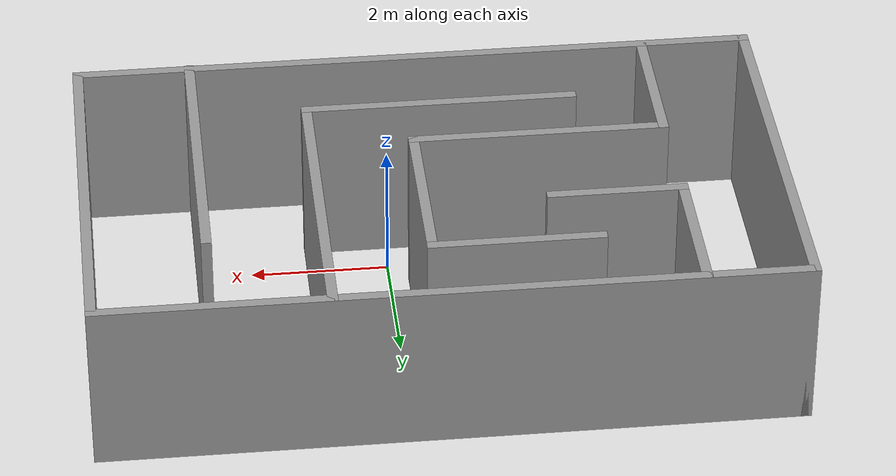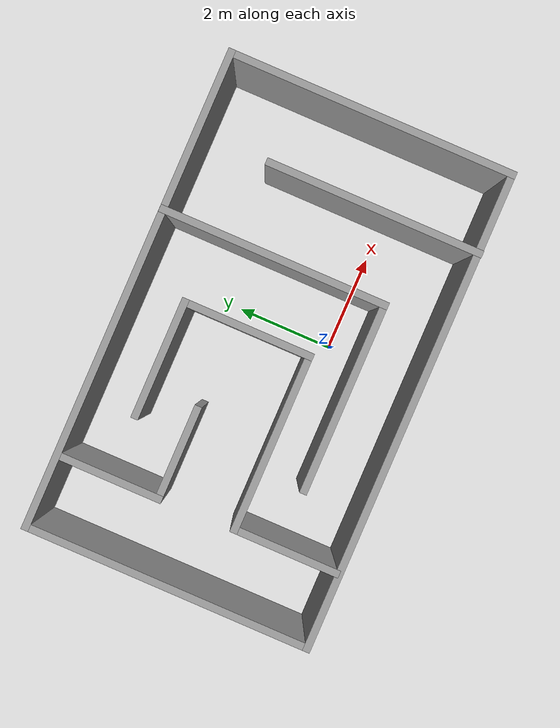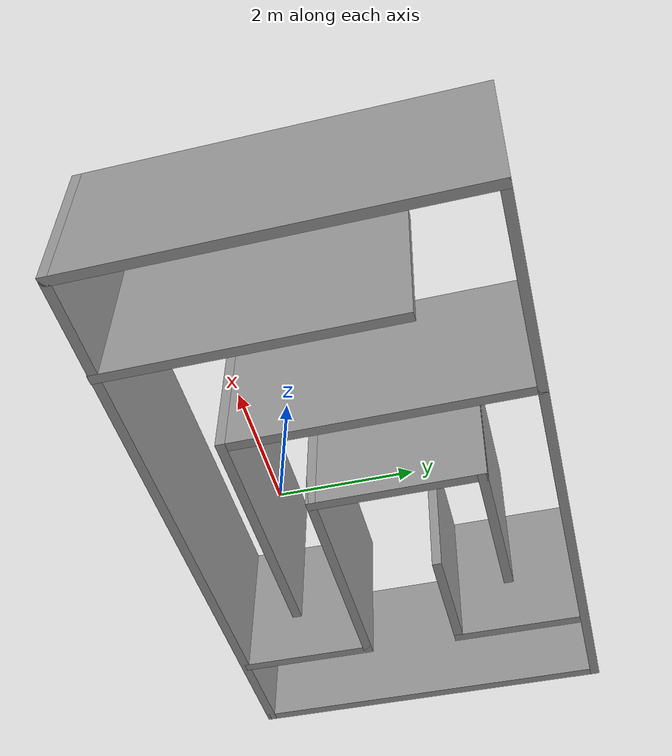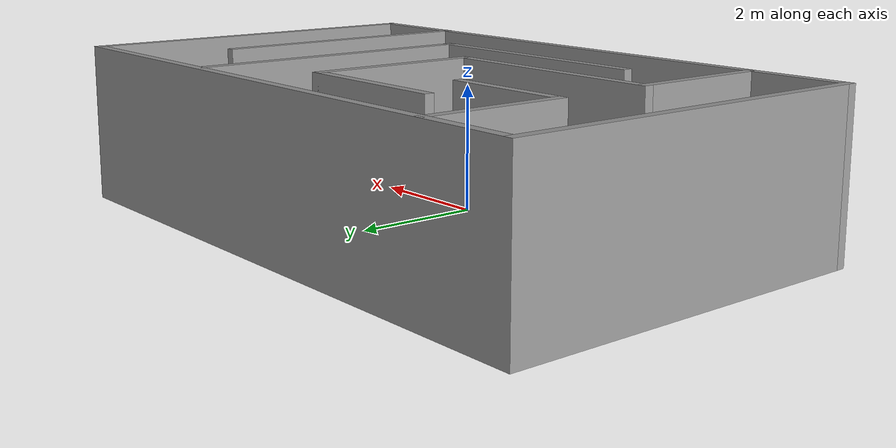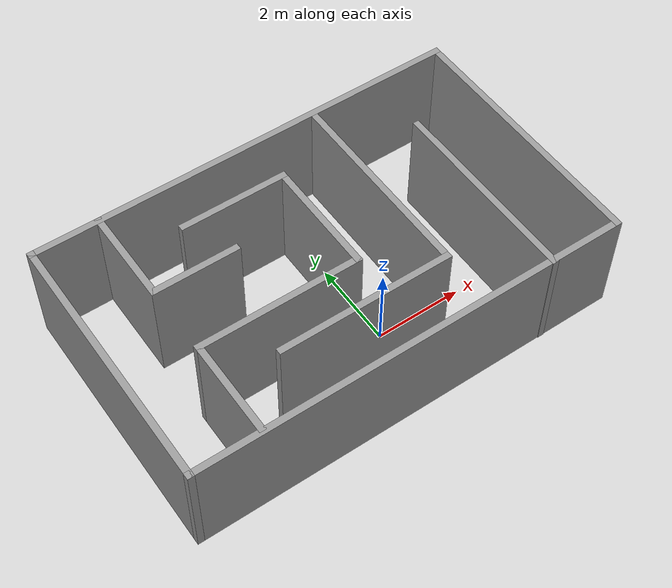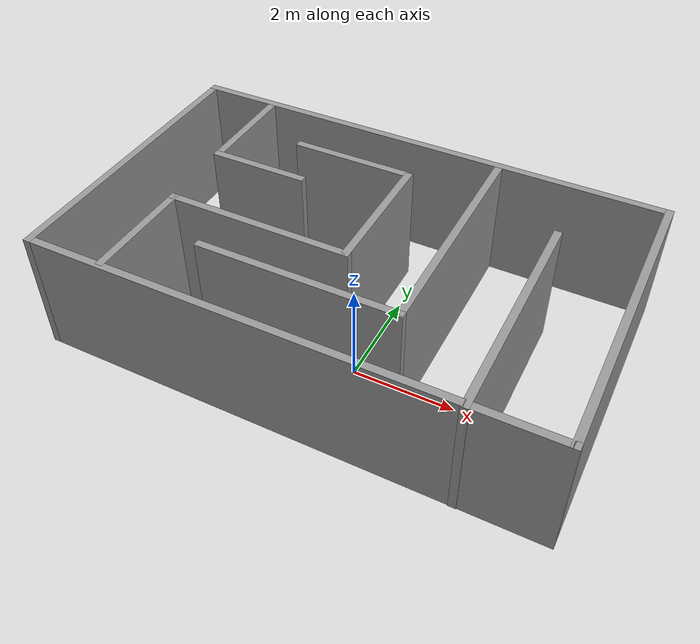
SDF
<?xml version='1.0'?>
<sdf version='1.7'>
  <model name='room'>
    <pose>-0.559594 1.11998 0 0 -0 0</pose>
    <link name='Wall_10'>
      <collision name='Wall_10_Collision'>
        <geometry>
          <box>
            <size>2.5 0.15 2.5</size>
          </box>
        </geometry>
        <pose>0 0 1.25 0 -0 0</pose>
      </collision>
      <visual name='Wall_10_Visual'>
        <pose>0 0 1.25 0 -0 0</pose>
        <geometry>
          <box>
            <size>2.5 0.15 2.5</size>
          </box>
        </geometry>
        <material>
          <script>
            <uri>file://media/materials/scripts/gazebo.material</uri>
            <name>Gazebo/Grey</name>
          </script>
          <ambient>1 1 1 1</ambient>
        </material>
        <meta>
          <layer>0</layer>
        </meta>
      </visual>
      <pose>-0.968596 1.85279 0 0 -0 0</pose>
    </link>
    <link name='Wall_11'>
      <collision name='Wall_11_Collision'>
        <geometry>
          <box>
            <size>2.75 0.15 2.5</size>
          </box>
        </geometry>
        <pose>0 0 1.25 0 -0 0</pose>
      </collision>
      <visual name='Wall_11_Visual'>
        <pose>0 0 1.25 0 -0 0</pose>
        <geometry>
          <box>
            <size>2.75 0.15 2.5</size>
          </box>
        </geometry>
        <material>
          <script>
            <uri>file://media/materials/scripts/gazebo.material</uri>
            <name>Gazebo/Grey</name>
          </script>
          <ambient>1 1 1 1</ambient>
        </material>
        <meta>
          <layer>0</layer>
        </meta>
      </visual>
      <pose>0.206404 0.55279 0 0 -0 -1.5708</pose>
    </link>
    <link name='Wall_12'>
      <collision name='Wall_12_Collision'>
        <geometry>
          <box>
            <size>3.75 0.15 2.5</size>
          </box>
        </geometry>
        <pose>0 0 1.25 0 -0 0</pose>
      </collision>
      <visual name='Wall_12_Visual'>
        <pose>0 0 1.25 0 -0 0</pose>
        <geometry>
          <box>
            <size>3.75 0.15 2.5</size>
          </box>
        </geometry>
        <material>
          <script>
            <uri>file://media/materials/scripts/gazebo.material</uri>
            <name>Gazebo/Grey</name>
          </script>
          <ambient>1 1 1 1</ambient>
        </material>
        <meta>
          <layer>0</layer>
        </meta>
      </visual>
      <pose>-1.5936 -0.74721 0 0 -0 3.14159</pose>
    </link>
    <link name='Wall_13'>
      <collision name='Wall_13_Collision'>
        <geometry>
          <box>
            <size>2.25 0.15 2.5</size>
          </box>
        </geometry>
        <pose>0 0 1.25 0 -0 0</pose>
      </collision>
      <visual name='Wall_13_Visual'>
        <pose>0 0 1.25 0 -0 0</pose>
        <geometry>
          <box>
            <size>2.25 0.15 2.5</size>
          </box>
        </geometry>
        <material>
          <script>
            <uri>file://media/materials/scripts/gazebo.material</uri>
            <name>Gazebo/Grey</name>
          </script>
          <ambient>1 1 1 1</ambient>
        </material>
        <meta>
          <layer>0</layer>
        </meta>
      </visual>
      <pose>-3.3936 -1.79721 0 0 -0 -1.5708</pose>
    </link>
    <link name='Wall_15'>
      <collision name='Wall_15_Collision'>
        <geometry>
          <box>
            <size>4.75 0.15 2.5</size>
          </box>
        </geometry>
        <pose>0 0 1.25 0 -0 0</pose>
      </collision>
      <visual name='Wall_15_Visual'>
        <pose>0 0 1.25 0 -0 0</pose>
        <geometry>
          <box>
            <size>4.75 0.15 2.5</size>
          </box>
        </geometry>
        <material>
          <script>
            <uri>file://media/materials/scripts/gazebo.material</uri>
            <name>Gazebo/Grey</name>
          </script>
          <ambient>1 1 1 1</ambient>
        </material>
        <meta>
          <layer>0</layer>
        </meta>
      </visual>
      <pose>1.67006 0.629087 0 0 -0 -1.5708</pose>
    </link>
    <link name='Wall_16'>
      <collision name='Wall_16_Collision'>
        <geometry>
          <box>
            <size>4 0.15 2.5</size>
          </box>
        </geometry>
        <pose>0 0 1.25 0 -0 0</pose>
      </collision>
      <visual name='Wall_16_Visual'>
        <pose>0 0 1.25 0 -0 0</pose>
        <geometry>
          <box>
            <size>4 0.15 2.5</size>
          </box>
        </geometry>
        <material>
          <script>
            <uri>file://media/materials/scripts/gazebo.material</uri>
            <name>Gazebo/Grey</name>
          </script>
          <ambient>1 1 1 1</ambient>
        </material>
        <meta>
          <layer>0</layer>
        </meta>
      </visual>
      <pose>-0.254936 -1.67091 0 0 -0 3.14159</pose>
    </link>
    <link name='Wall_18'>
      <collision name='Wall_18_Collision'>
        <geometry>
          <box>
            <size>4.5 0.15 2.5</size>
          </box>
        </geometry>
        <pose>0 0 1.25 0 -0 0</pose>
      </collision>
      <visual name='Wall_18_Visual'>
        <pose>0 0 1.25 0 -0 0</pose>
        <geometry>
          <box>
            <size>4.5 0.15 2.5</size>
          </box>
        </geometry>
        <material>
          <script>
            <uri>file://media/materials/scripts/gazebo.material</uri>
            <name>Gazebo/Grey</name>
          </script>
          <ambient>1 1 1 1</ambient>
        </material>
        <meta>
          <layer>0</layer>
        </meta>
      </visual>
      <pose>3.29294 -0.756498 0 0 -0 1.5708</pose>
    </link>
    <link name='Wall_2'>
      <collision name='Wall_2_Collision'>
        <geometry>
          <box>
            <size>10 0.15 2.5</size>
          </box>
        </geometry>
        <pose>0 0 1.25 0 -0 0</pose>
      </collision>
      <visual name='Wall_2_Visual'>
        <pose>0 0 1.25 0 -0 0</pose>
        <geometry>
          <box>
            <size>10 0.15 2.5</size>
          </box>
        </geometry>
        <material>
          <script>
            <uri>file://media/materials/scripts/gazebo.material</uri>
            <name>Gazebo/Grey</name>
          </script>
          <ambient>1 1 1 1</ambient>
        </material>
        <meta>
          <layer>0</layer>
        </meta>
      </visual>
      <pose>0 2.9315 0 0 -0 0</pose>
    </link>
    <link name='Wall_3'>
      <collision name='Wall_3_Collision'>
        <geometry>
          <box>
            <size>6 0.15 2.5</size>
          </box>
        </geometry>
        <pose>0 0 1.25 0 -0 0</pose>
      </collision>
      <visual name='Wall_3_Visual'>
        <pose>0 0 1.25 0 -0 0</pose>
        <geometry>
          <box>
            <size>6 0.15 2.5</size>
          </box>
        </geometry>
        <material>
          <script>
            <uri>file://media/materials/scripts/gazebo.material</uri>
            <name>Gazebo/Grey</name>
          </script>
          <ambient>1 1 1 1</ambient>
        </material>
        <meta>
          <layer>0</layer>
        </meta>
      </visual>
      <pose>4.925 0.006498 0 0 -0 -1.5708</pose>
    </link>
    <link name='Wall_4'>
      <collision name='Wall_4_Collision'>
        <geometry>
          <box>
            <size>10 0.15 2.5</size>
          </box>
        </geometry>
        <pose>0 0 1.25 0 -0 0</pose>
      </collision>
      <visual name='Wall_4_Visual'>
        <pose>0 0 1.25 0 -0 0</pose>
        <geometry>
          <box>
            <size>10 0.15 2.5</size>
          </box>
        </geometry>
        <material>
          <script>
            <uri>file://media/materials/scripts/gazebo.material</uri>
            <name>Gazebo/Grey</name>
          </script>
          <ambient>1 1 1 1</ambient>
        </material>
        <meta>
          <layer>0</layer>
        </meta>
      </visual>
      <pose>0 -2.9185 0 0 -0 3.14159</pose>
    </link>
    <link name='Wall_5'>
      <collision name='Wall_5_Collision'>
        <geometry>
          <box>
            <size>6 0.15 2.5</size>
          </box>
        </geometry>
        <pose>0 0 1.25 0 -0 0</pose>
      </collision>
      <visual name='Wall_5_Visual'>
        <pose>0 0 1.25 0 -0 0</pose>
        <geometry>
          <box>
            <size>6 0.15 2.5</size>
          </box>
        </geometry>
        <material>
          <script>
            <uri>file://media/materials/scripts/gazebo.material</uri>
            <name>Gazebo/Grey</name>
          </script>
          <ambient>1 1 1 1</ambient>
        </material>
        <meta>
          <layer>0</layer>
        </meta>
      </visual>
      <pose>-4.925 0.006498 0 0 -0 1.5708</pose>
    </link>
    <link name='Wall_7'>
      <collision name='Wall_7_Collision'>
        <geometry>
          <box>
            <size>2.25 0.15 2.5</size>
          </box>
        </geometry>
        <pose>0 0 1.25 0 -0 0</pose>
      </collision>
      <visual name='Wall_7_Visual'>
        <pose>0 0 1.25 0 -0 0</pose>
        <geometry>
          <box>
            <size>2.25 0.15 2.5</size>
          </box>
        </geometry>
        <material>
          <script>
            <uri>file://media/materials/scripts/gazebo.material</uri>
            <name>Gazebo/Grey</name>
          </script>
          <ambient>1 1 1 1</ambient>
        </material>
        <meta>
          <layer>0</layer>
        </meta>
      </visual>
      <pose>-3.43467 1.87072 0 0 -0 -1.5708</pose>
    </link>
    <link name='Wall_8'>
      <collision name='Wall_8_Collision'>
        <geometry>
          <box>
            <size>2 0.15 2.5</size>
          </box>
        </geometry>
        <pose>0 0 1.25 0 -0 0</pose>
      </collision>
      <visual name='Wall_8_Visual'>
        <pose>0 0 1.25 0 -0 0</pose>
        <geometry>
          <box>
            <size>2 0.15 2.5</size>
          </box>
        </geometry>
        <material>
          <script>
            <uri>file://media/materials/scripts/gazebo.material</uri>
            <name>Gazebo/Grey</name>
          </script>
          <ambient>1 1 1 1</ambient>
        </material>
        <meta>
          <layer>0</layer>
        </meta>
      </visual>
      <pose>-2.50967 0.820717 0 0 -0 0</pose>
    </link>
    <static>1</static>
  </model>
</sdf>
